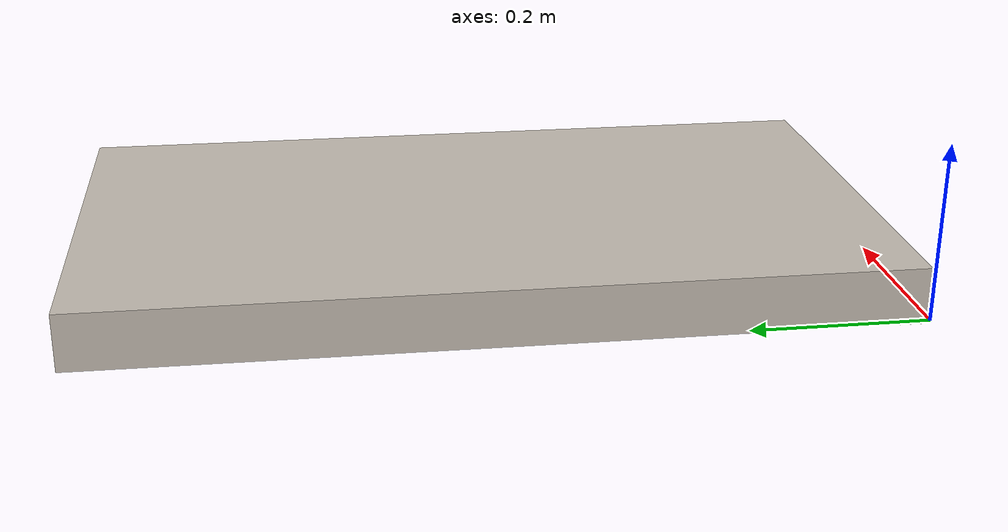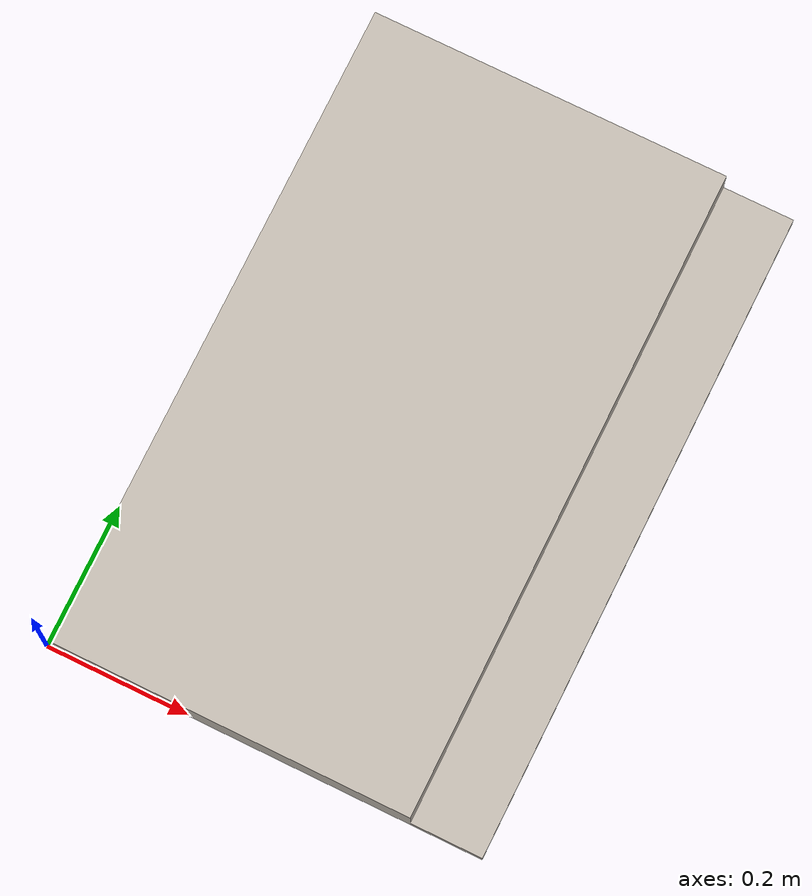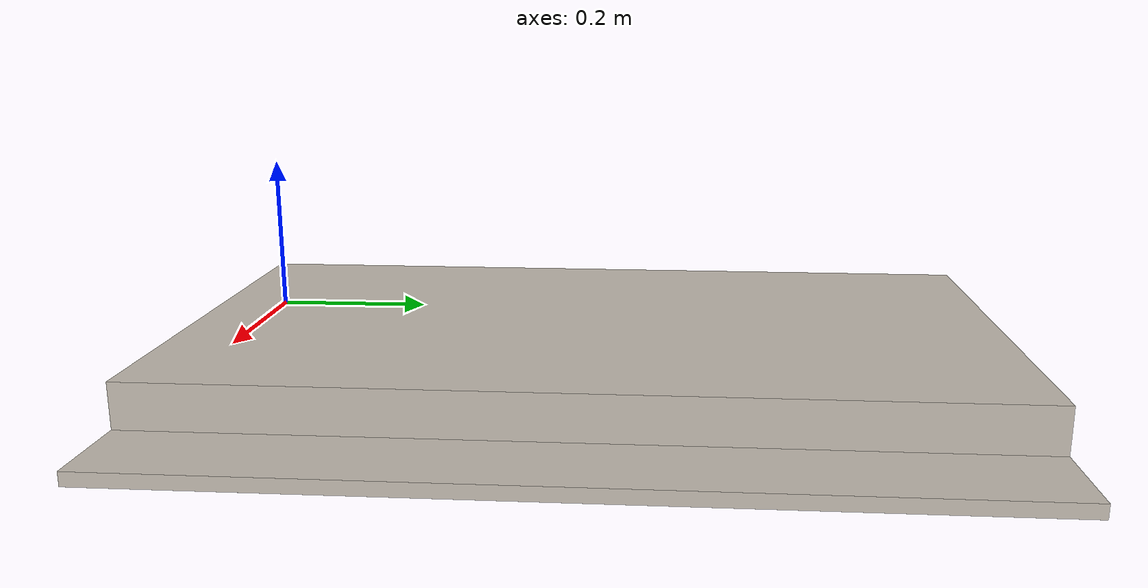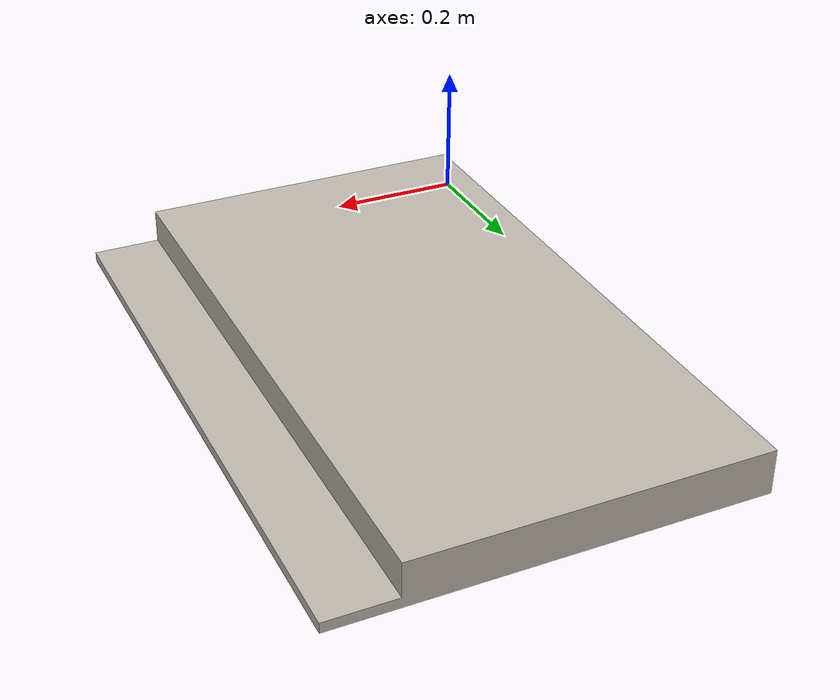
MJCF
<mujoco model="bench_lid">
  <default>
    <default class="visual">
      <geom group="2" type="mesh" contype="0" conaffinity="0"/>
    </default>
    <default class="collision">
      <geom group="3" type="mesh"/>
    </default>
  </default>
  <asset>
    <texture type="2d" name="material_bench_lid_0" file="material_bench_lid_0.png"/>
    <material name="material_bench_lid_0" texture="material_bench_lid_0" specular="0.4000000000000001" shininess="0.001"/>
    <mesh file="bench_lid.obj"/>
    <mesh file="bench_lid_collision_0.obj"/>
    <mesh file="bench_lid_collision_1.obj"/>
  </asset>
  <worldbody>
    <body name="bench_lid">
      <geom material="material_bench_lid_0" mesh="bench_lid" class="visual"/>
      <geom mesh="bench_lid_collision_0" rgba="0.04622794838213906 0.813305054990769 0.208409483139547 1" class="collision"/>
      <geom mesh="bench_lid_collision_1" rgba="0.6508883777110669 0.46762824725584273 0.6188302202776396 1" class="collision"/>
    </body>
  </worldbody>
</mujoco>
